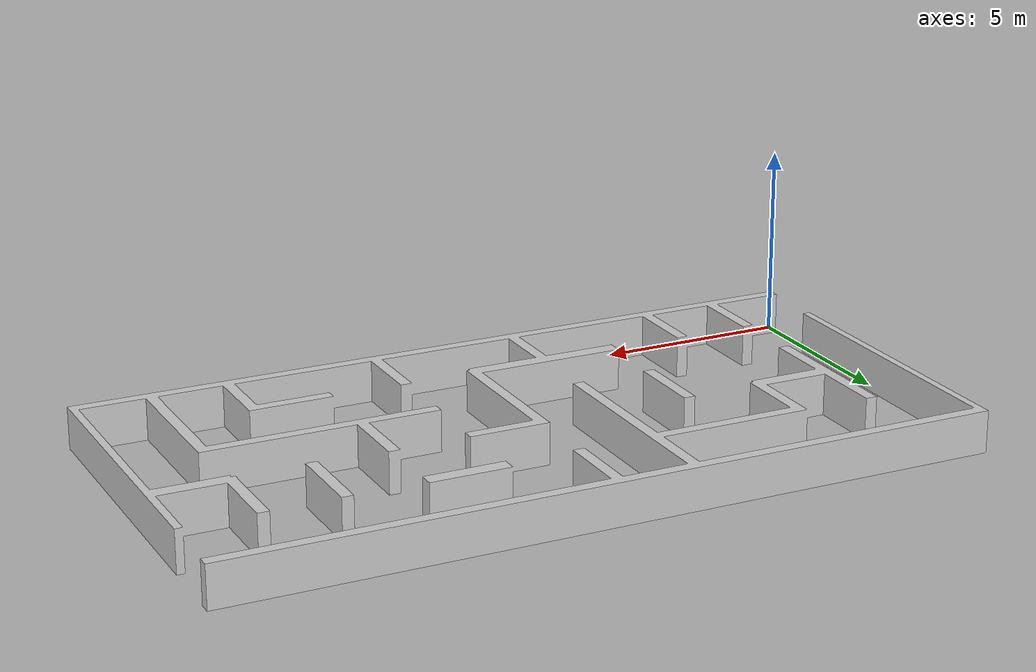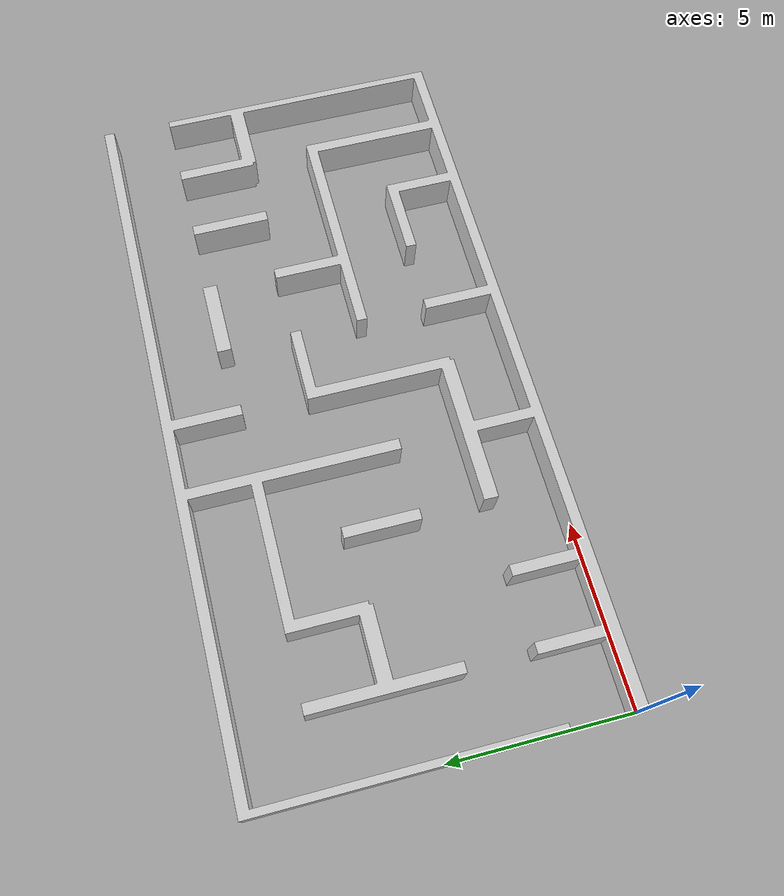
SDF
<?xml version="1.0" ?>
<sdf version="1.6">
  <model name="maze">
    <static>true</static>
    <link name="link">
      <collision name="collision">
        <geometry>
          <mesh>
            <uri>model://maze/meshes/map.obj</uri>
          </mesh>
        </geometry>
      </collision>
      <visual name="visual">
        <geometry>
          <mesh>
            <uri>model://maze/meshes/map.obj</uri>
          </mesh>
        </geometry>
        <material>
          <ambient>0.48 0.48 0.48 1.0</ambient>
          <diffuse>0.8 0.8 0.8 1.0</diffuse>
          <specular>0.1 0.1 0.1 1</specular>
          <emissive>0 0 0 1</emissive>
        </material>
      </visual>
    </link>
  </model>
</sdf>
